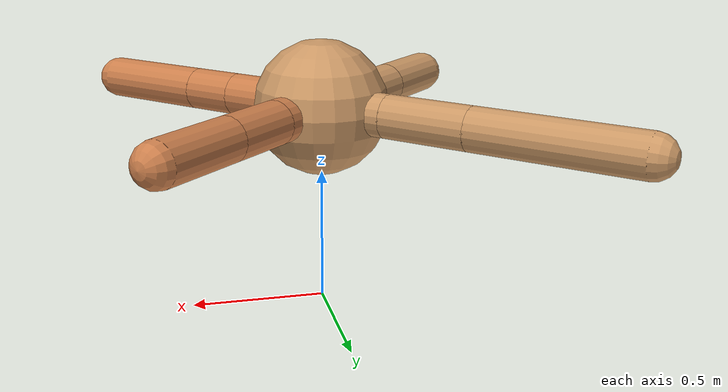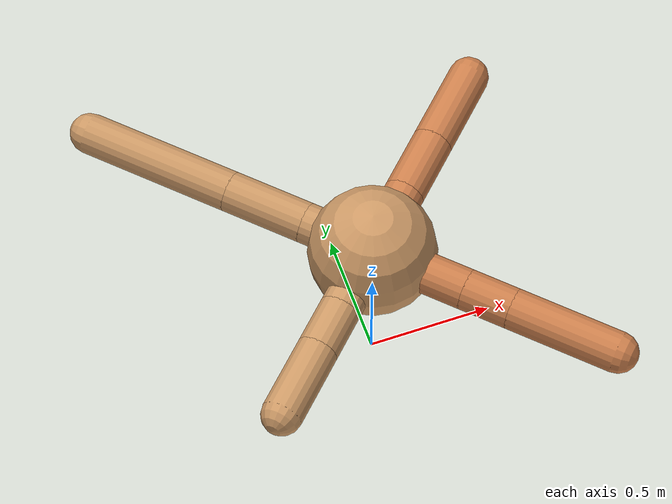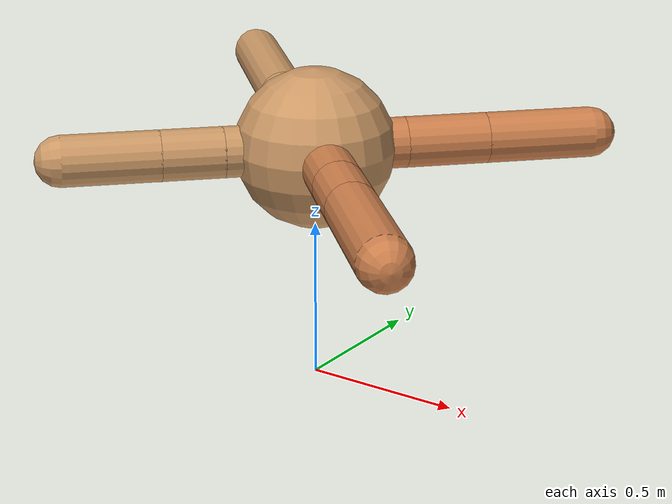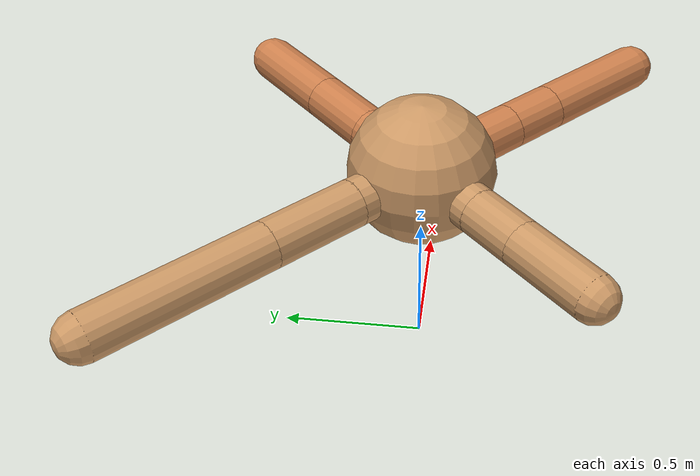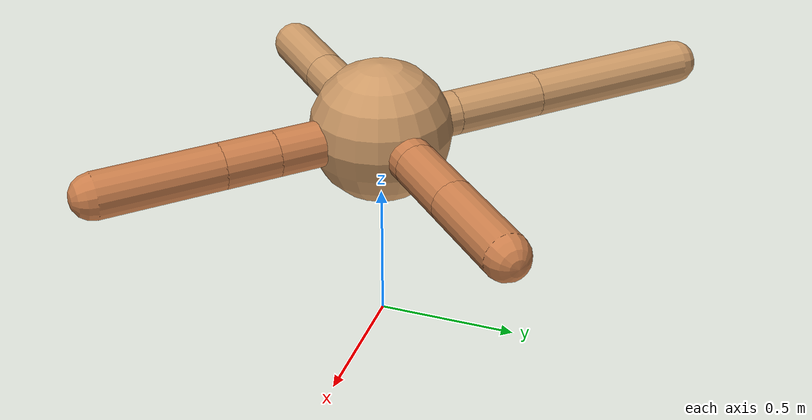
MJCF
<mujoco model="ant">
  <compiler angle="degree" coordinate="local" inertiafromgeom="true" />
  <option integrator="RK4" timestep="0.01" />
  <custom>
    <numeric data="0.0 0.0 0.55 1.0 0.0 0.0 0.0 0.0 1.0 0.0 -1.0 0.0 -1.0 0.0 1.0" name="init_qpos" />
  </custom>
  <default>
    <joint armature="1" damping="1" limited="true" />
    <geom conaffinity="0" condim="3" density="5.0" friction="1.5 0.1 0.1" margin="0.01" rgba="0.8 0.6 0.4 1" />
  </default>
  <worldbody>
    <body name="torso" pos="0 0 0.75">
      <geom name="torso_geom" pos="0 0 0" size="0.25" type="sphere" />

      <body name="front_left_leg" pos="0 0 0">
        <geom fromto="0.0 0.0 0.0 0.2 0.2 0.0" name="aux_1_geom" size="0.08" type="capsule" rgba=".8 .5 .3 1" />
        <body name="aux_1" pos="0.2 0.2 0.0">
          <joint axis="0 0 1" name="hip_1" pos="0.0 0.0 0.0" range="-40 40" type="hinge" />
          <geom fromto="0.0 0.0 0.0 0.18190500724911052 0.18190500724911052 0.0" name="left_leg_geom" size="0.08" type="capsule" rgba=".8 .5 .3 1" />
          <body pos="0.18190500724911052 0.18190500724911052 0.0" name="front_left_foot">
            <joint axis="-1 1 0" name="ankle_1" pos="0.0 0.0 0.0" range="30 100" type="hinge" />
            <geom fromto="0.0 0.0 0.0 0.23995023351505318 0.23995023351505318 0.0" name="left_ankle_geom" size="0.08" type="capsule" rgba=".8 .5 .3 1" />
          </body>
        </body>
      </body>
      <body name="front_right_leg" pos="0 0 0">
        <geom fromto="0.0 0.0 0.0 -0.2 0.2 0.0" name="aux_2_geom" size="0.08" type="capsule" />
        <body name="aux_2" pos="-0.2 0.2 0.0">
          <joint axis="0 0 1" name="hip_2" pos="0.0 0.0 0.0" range="-40 40" type="hinge" />
          <geom fromto="0.0 0.0 0.0 -0.2282487357909452 0.2282487357909452 0.0" name="right_leg_geom" size="0.08" type="capsule" />
          <body pos="-0.2282487357909452 0.2282487357909452 0.0" name="front_right_foot">
            <joint axis="1 1 0" name="ankle_2" pos="0.0 0.0 0.0" range="-100 -30" type="hinge" />
            <geom fromto="0.0 0.0 0.0 -0.4327600766952059 0.4327600766952059 0.0" name="right_ankle_geom" size="0.08" type="capsule" />
          </body>
        </body>
      </body>
      <body name="left_back_leg" pos="0 0 0">
        <geom fromto="0.0 0.0 0.0 -0.2 -0.2 0.0" name="aux_3_geom" size="0.08" type="capsule" />
        <body name="aux_3" pos="-0.2 -0.2 0.0">
          <joint axis="0 0 1" name="hip_3" pos="0.0 0.0 0.0" range="-40 40" type="hinge" />
          <geom fromto="0.0 0.0 0.0 -0.13601697769904025 -0.13601697769904025 0.0" name="back_leg_geom" size="0.08" type="capsule" />
          <body pos="-0.13601697769904025 -0.13601697769904025 0.0" name="left_back_foot">
            <joint axis="-1 1 0" name="ankle_3" pos="0.0 0.0 0.0" range="-100 -30" type="hinge" />
            <geom fromto="0.0 0.0 0.0 -0.2122896529352735 -0.2122896529352735 0.0" name="third_ankle_geom" size="0.08" type="capsule" />
          </body>
        </body>
      </body>
      <body name="right_back_leg" pos="0 0 0">
        <geom fromto="0.0 0.0 0.0 0.27624791084728406 -0.27624791084728406 0.0" name="aux_4_geom" size="0.08" type="capsule" rgba=".8 .5 .3 1" />
        <body name="aux_4" pos="0.27624791084728406 -0.27624791084728406 0.0">
          <joint axis="0 0 1" name="hip_4" pos="0.0 0.0 0.0" range="-40 40" type="hinge" />
          <geom fromto="0.0 0.0 0.0 0.13515890224878044 -0.13515890224878044 0.0" name="rightback_leg_geom" size="0.08" type="capsule" rgba=".8 .5 .3 1" />
          <body pos="0.13515890224878044 -0.13515890224878044 0.0" name="right_back_foot">
            <joint axis="1 1 0" name="ankle_4" pos="0.0 0.0 0.0" range="30 100" type="hinge" />
            <geom fromto="0.0 0.0 0.0 0.30407294442295074 -0.30407294442295074 0.0" name="fourth_ankle_geom" size="0.08" type="capsule" rgba=".8 .5 .3 1" />
          </body>
        </body>
      </body>
    </body>
  </worldbody>
  <actuator>
    <motor ctrllimited="true" ctrlrange="-1.0 1.0" joint="hip_4" gear="150" />
    <motor ctrllimited="true" ctrlrange="-1.0 1.0" joint="ankle_4" gear="150" />
    <motor ctrllimited="true" ctrlrange="-1.0 1.0" joint="hip_1" gear="150" />
    <motor ctrllimited="true" ctrlrange="-1.0 1.0" joint="ankle_1" gear="150" />
    <motor ctrllimited="true" ctrlrange="-1.0 1.0" joint="hip_2" gear="150" />
    <motor ctrllimited="true" ctrlrange="-1.0 1.0" joint="ankle_2" gear="150" />
    <motor ctrllimited="true" ctrlrange="-1.0 1.0" joint="hip_3" gear="150" />
    <motor ctrllimited="true" ctrlrange="-1.0 1.0" joint="ankle_3" gear="150" />
  </actuator>
</mujoco>
